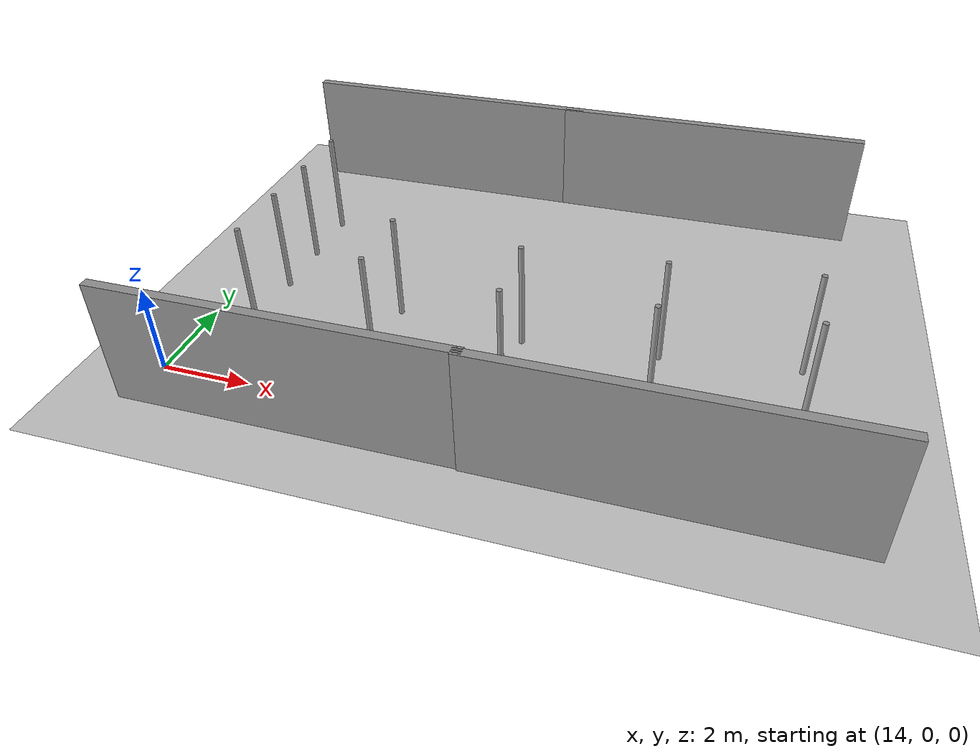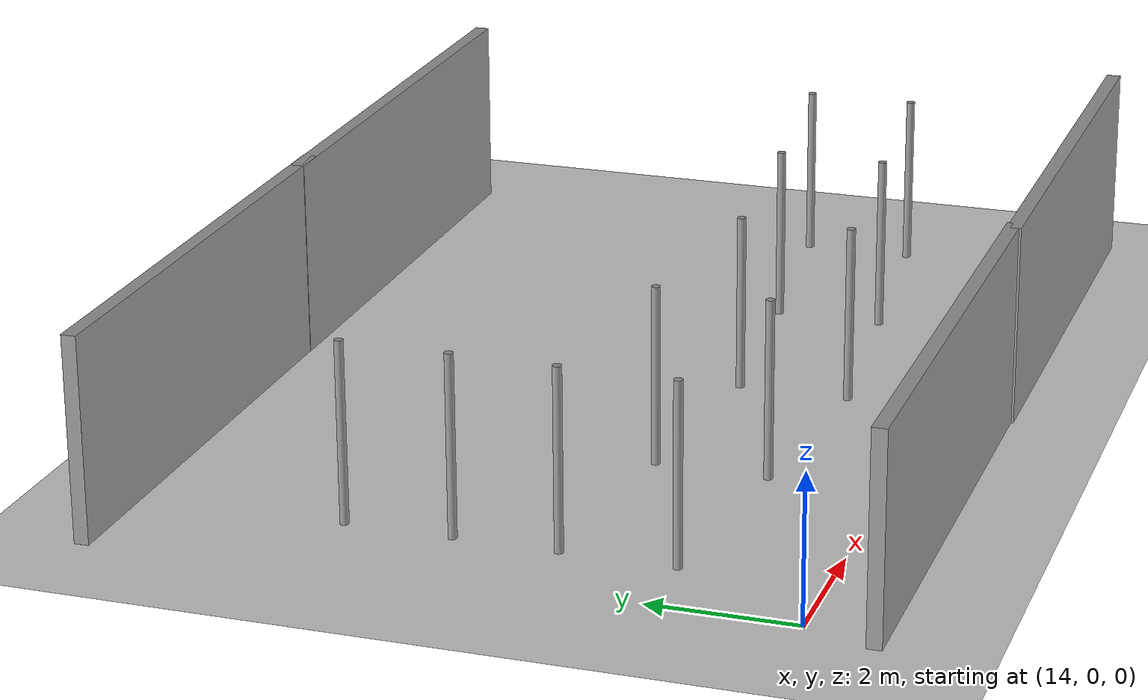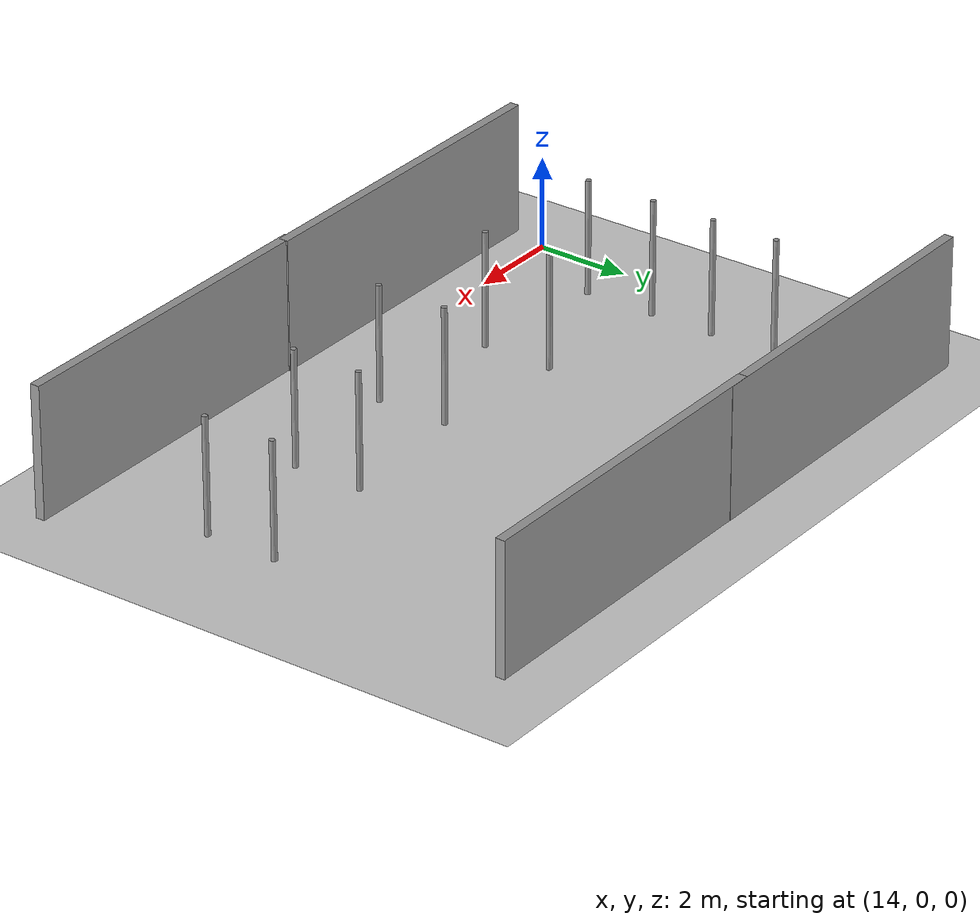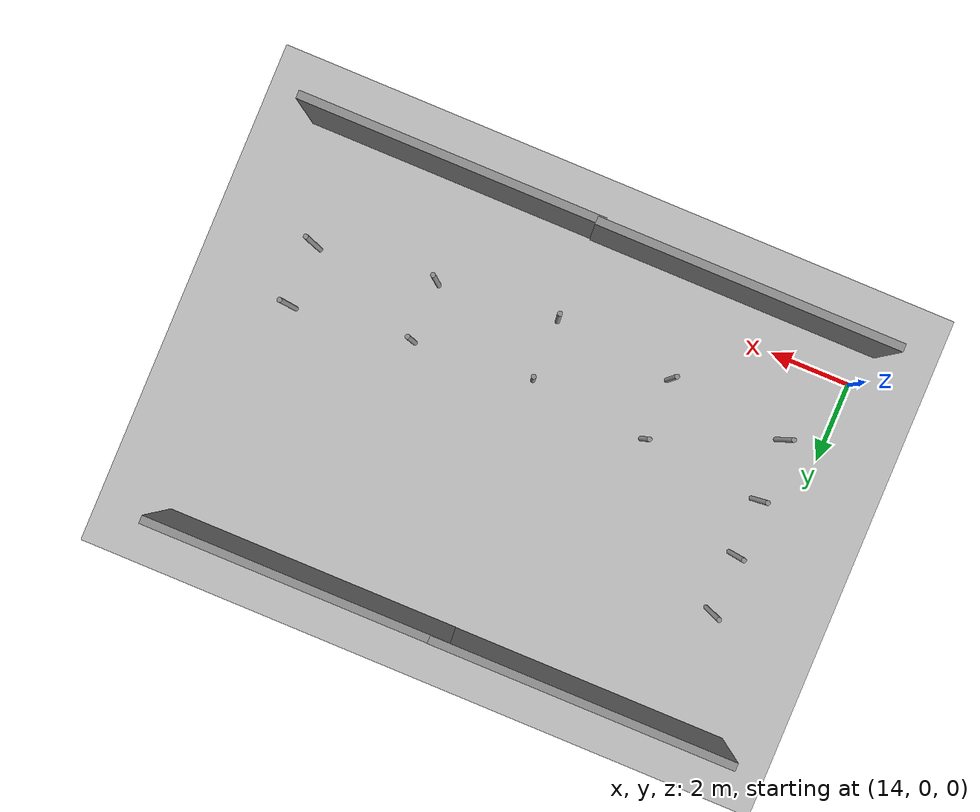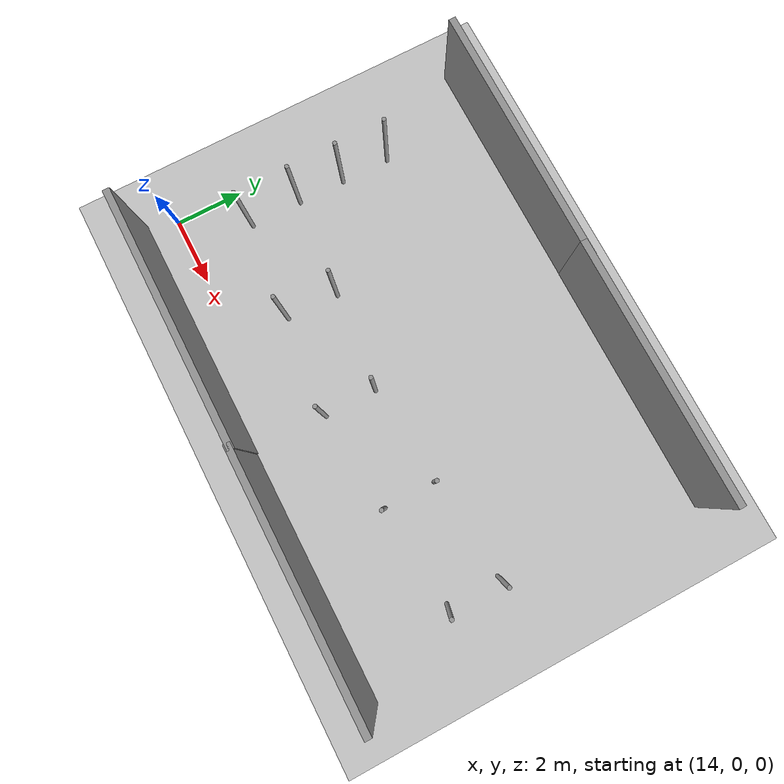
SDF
<sdf version="1.6">
 <world name="default">
  <model name="ground_plane">
   <static>1</static>
   <link name="link">
    <collision name="collision">
     <geometry><plane><normal>0 0 1</normal><size>100 100</size></plane></geometry>
     <surface><friction><ode><mu>100</mu><mu2>50</mu2></ode></friction></surface>
    </collision>
    <visual name="visual">
     <cast_shadows>0</cast_shadows>
     <geometry><plane><normal>0 0 1</normal><size>100 100</size></plane></geometry>
     <material>
      <script><uri>file://media/materials/scripts/gazebo.material</uri><name>Gazebo/Grey</name></script>
     </material>
    </visual>
   </link>
  </model>
  <model name="pole_11">
   <link name="link_0">
    <inertial>
     <mass>0.0364582</mass>
     <inertia>
      <ixx>0.00312124</ixx>
      <ixy>0</ixy>
      <ixz>0</ixz>
      <iyy>0.00312124</iyy>
      <iyz>0</iyz>
      <izz>0.00016615</izz>
     </inertia>
    </inertial>
    <visual name="visual">
     <geometry><cylinder><radius>0.06</radius><length>2.5</length></cylinder></geometry>
     <material>
      <lighting>1</lighting>
      <script><uri>file://media/materials/scripts/gazebo.material</uri><name>Gazebo/Grey</name></script>
      <ambient>0.3 0.3 0.3 1</ambient>
      <diffuse>0.7 0.7 0.7 1</diffuse>
      <specular>0.01 0.01 0.01 1</specular>
      <emissive>0 0 0 1</emissive>
      <shader type="vertex"><normal_map>__default__</normal_map></shader>
     </material>
    </visual>
    <collision name="collision">
     <geometry><cylinder><radius>0.06</radius><length>2.5</length></cylinder></geometry>
     <surface>
      <friction>
       <ode><mu>1</mu><mu2>1</mu2><fdir1>0 0 0</fdir1><slip1>0</slip1><slip2>0</slip2></ode>
       <torsional>
        <coefficient>1</coefficient>
        <patch_radius>0</patch_radius>
        <surface_radius>0</surface_radius>
        <use_patch_radius>1</use_patch_radius>
        <ode><slip>0</slip></ode>
       </torsional>
      </friction>
      <bounce><restitution_coefficient>0</restitution_coefficient><threshold>1e+06</threshold></bounce>
      <contact>
       <collide_without_contact>0</collide_without_contact>
       <collide_without_contact_bitmask>1</collide_without_contact_bitmask>
       <collide_bitmask>1</collide_bitmask>
       <ode>
        <soft_cfm>0</soft_cfm>
        <soft_erp>0.2</soft_erp>
        <kp>1e+13</kp>
        <kd>1</kd>
        <max_vel>0.01</max_vel>
        <min_depth>0</min_depth>
       </ode>
       <bullet>
        <split_impulse>1</split_impulse>
        <split_impulse_penetration_threshold>-0.01</split_impulse_penetration_threshold>
        <soft_cfm>0</soft_cfm>
        <soft_erp>0.2</soft_erp>
        <kp>1e+13</kp>
        <kd>1</kd>
       </bullet>
      </contact>
     </surface>
    </collision>
   </link>
   <static>0</static>
   <pose>15.1067 1.89973 1.24999 -1e-06 1e-06 -0.030798</pose>
  </model>
  <model name="pole_12">
   <link name="link_0">
    <inertial>
     <mass>0.0364582</mass>
     <inertia>
      <ixx>0.00312124</ixx>
      <ixy>0</ixy>
      <ixz>0</ixz>
      <iyy>0.00312124</iyy>
      <iyz>0</iyz>
      <izz>0.00016615</izz>
     </inertia>
    </inertial>
    <visual name="visual">
     <geometry><cylinder><radius>0.06</radius><length>2.5</length></cylinder></geometry>
     <material>
      <lighting>1</lighting>
      <script><uri>file://media/materials/scripts/gazebo.material</uri><name>Gazebo/Grey</name></script>
      <ambient>0.3 0.3 0.3 1</ambient>
      <diffuse>0.7 0.7 0.7 1</diffuse>
      <specular>0.01 0.01 0.01 1</specular>
      <emissive>0 0 0 1</emissive>
      <shader type="vertex"><normal_map>__default__</normal_map></shader>
     </material>
    </visual>
    <collision name="collision">
     <geometry><cylinder><radius>0.06</radius><length>2.5</length></cylinder></geometry>
     <surface>
      <friction>
       <ode><mu>1</mu><mu2>1</mu2><fdir1>0 0 0</fdir1><slip1>0</slip1><slip2>0</slip2></ode>
       <torsional>
        <coefficient>1</coefficient>
        <patch_radius>0</patch_radius>
        <surface_radius>0</surface_radius>
        <use_patch_radius>1</use_patch_radius>
        <ode><slip>0</slip></ode>
       </torsional>
      </friction>
      <bounce><restitution_coefficient>0</restitution_coefficient><threshold>1e+06</threshold></bounce>
      <contact>
       <collide_without_contact>0</collide_without_contact>
       <collide_without_contact_bitmask>1</collide_without_contact_bitmask>
       <collide_bitmask>1</collide_bitmask>
       <ode>
        <soft_cfm>0</soft_cfm>
        <soft_erp>0.2</soft_erp>
        <kp>1e+13</kp>
        <kd>1</kd>
        <max_vel>0.01</max_vel>
        <min_depth>0</min_depth>
       </ode>
       <bullet>
        <split_impulse>1</split_impulse>
        <split_impulse_penetration_threshold>-0.01</split_impulse_penetration_threshold>
        <soft_cfm>0</soft_cfm>
        <soft_erp>0.2</soft_erp>
        <kp>1e+13</kp>
        <kd>1</kd>
       </bullet>
      </contact>
     </surface>
    </collision>
   </link>
   <static>0</static>
   <pose>18.1068 1.59035 1.25 -1e-06 -0 -0.033715</pose>
  </model>
  <model name="pole_13">
   <link name="link_0">
    <inertial>
     <mass>0.0364582</mass>
     <inertia>
      <ixx>0.00312124</ixx>
      <ixy>0</ixy>
      <ixz>0</ixz>
      <iyy>0.00312124</iyy>
      <iyz>0</iyz>
      <izz>0.00016615</izz>
     </inertia>
    </inertial>
    <visual name="visual">
     <geometry><cylinder><radius>0.06</radius><length>2.5</length></cylinder></geometry>
     <material>
      <lighting>1</lighting>
      <script><uri>file://media/materials/scripts/gazebo.material</uri><name>Gazebo/Grey</name></script>
      <ambient>0.3 0.3 0.3 1</ambient>
      <diffuse>0.7 0.7 0.7 1</diffuse>
      <specular>0.01 0.01 0.01 1</specular>
      <emissive>0 0 0 1</emissive>
      <shader type="vertex"><normal_map>__default__</normal_map></shader>
     </material>
    </visual>
    <collision name="collision">
     <geometry><cylinder><radius>0.06</radius><length>2.5</length></cylinder></geometry>
     <surface>
      <friction>
       <ode><mu>1</mu><mu2>1</mu2><fdir1>0 0 0</fdir1><slip1>0</slip1><slip2>0</slip2></ode>
       <torsional>
        <coefficient>1</coefficient>
        <patch_radius>0</patch_radius>
        <surface_radius>0</surface_radius>
        <use_patch_radius>1</use_patch_radius>
        <ode><slip>0</slip></ode>
       </torsional>
      </friction>
      <bounce><restitution_coefficient>0</restitution_coefficient><threshold>1e+06</threshold></bounce>
      <contact>
       <collide_without_contact>0</collide_without_contact>
       <collide_without_contact_bitmask>1</collide_without_contact_bitmask>
       <collide_bitmask>1</collide_bitmask>
       <ode>
        <soft_cfm>0</soft_cfm>
        <soft_erp>0.2</soft_erp>
        <kp>1e+13</kp>
        <kd>1</kd>
        <max_vel>0.01</max_vel>
        <min_depth>0</min_depth>
       </ode>
       <bullet>
        <split_impulse>1</split_impulse>
        <split_impulse_penetration_threshold>-0.01</split_impulse_penetration_threshold>
        <soft_cfm>0</soft_cfm>
        <soft_erp>0.2</soft_erp>
        <kp>1e+13</kp>
        <kd>1</kd>
       </bullet>
      </contact>
     </surface>
    </collision>
   </link>
   <static>0</static>
   <pose>21.1068 1.29034 1.24999 -1e-06 1e-06 -0.03336</pose>
  </model>
  <model name="pole_14">
   <link name="link_0">
    <inertial>
     <mass>0.0364582</mass>
     <inertia>
      <ixx>0.00312124</ixx>
      <ixy>0</ixy>
      <ixz>0</ixz>
      <iyy>0.00312124</iyy>
      <iyz>0</iyz>
      <izz>0.00016615</izz>
     </inertia>
    </inertial>
    <visual name="visual">
     <geometry><cylinder><radius>0.06</radius><length>2.5</length></cylinder></geometry>
     <material>
      <lighting>1</lighting>
      <script><uri>file://media/materials/scripts/gazebo.material</uri><name>Gazebo/Grey</name></script>
      <ambient>0.3 0.3 0.3 1</ambient>
      <diffuse>0.7 0.7 0.7 1</diffuse>
      <specular>0.01 0.01 0.01 1</specular>
      <emissive>0 0 0 1</emissive>
      <shader type="vertex"><normal_map>__default__</normal_map></shader>
     </material>
    </visual>
    <collision name="collision">
     <geometry><cylinder><radius>0.06</radius><length>2.5</length></cylinder></geometry>
     <surface>
      <friction>
       <ode><mu>1</mu><mu2>1</mu2><fdir1>0 0 0</fdir1><slip1>0</slip1><slip2>0</slip2></ode>
       <torsional>
        <coefficient>1</coefficient>
        <patch_radius>0</patch_radius>
        <surface_radius>0</surface_radius>
        <use_patch_radius>1</use_patch_radius>
        <ode><slip>0</slip></ode>
       </torsional>
      </friction>
      <bounce><restitution_coefficient>0</restitution_coefficient><threshold>1e+06</threshold></bounce>
      <contact>
       <collide_without_contact>0</collide_without_contact>
       <collide_without_contact_bitmask>1</collide_without_contact_bitmask>
       <collide_bitmask>1</collide_bitmask>
       <ode>
        <soft_cfm>0</soft_cfm>
        <soft_erp>0.2</soft_erp>
        <kp>1e+13</kp>
        <kd>1</kd>
        <max_vel>0.01</max_vel>
        <min_depth>0</min_depth>
       </ode>
       <bullet>
        <split_impulse>1</split_impulse>
        <split_impulse_penetration_threshold>-0.01</split_impulse_penetration_threshold>
        <soft_cfm>0</soft_cfm>
        <soft_erp>0.2</soft_erp>
        <kp>1e+13</kp>
        <kd>1</kd>
       </bullet>
      </contact>
     </surface>
    </collision>
   </link>
   <static>0</static>
   <pose>15.1068 3.44586 1.24999 -1e-06 -1e-06 -0.006445</pose>
  </model>
  <model name="pole_15">
   <link name="link_0">
    <inertial>
     <mass>0.0364582</mass>
     <inertia>
      <ixx>0.00312124</ixx>
      <ixy>0</ixy>
      <ixz>0</ixz>
      <iyy>0.00312124</iyy>
      <iyz>0</iyz>
      <izz>0.00016615</izz>
     </inertia>
    </inertial>
    <visual name="visual">
     <geometry><cylinder><radius>0.06</radius><length>2.5</length></cylinder></geometry>
     <material>
      <lighting>1</lighting>
      <script><uri>file://media/materials/scripts/gazebo.material</uri><name>Gazebo/Grey</name></script>
      <ambient>0.3 0.3 0.3 1</ambient>
      <diffuse>0.7 0.7 0.7 1</diffuse>
      <specular>0.01 0.01 0.01 1</specular>
      <emissive>0 0 0 1</emissive>
      <shader type="vertex"><normal_map>__default__</normal_map></shader>
     </material>
    </visual>
    <collision name="collision">
     <geometry><cylinder><radius>0.06</radius><length>2.5</length></cylinder></geometry>
     <surface>
      <friction>
       <ode><mu>1</mu><mu2>1</mu2><fdir1>0 0 0</fdir1><slip1>0</slip1><slip2>0</slip2></ode>
       <torsional>
        <coefficient>1</coefficient>
        <patch_radius>0</patch_radius>
        <surface_radius>0</surface_radius>
        <use_patch_radius>1</use_patch_radius>
        <ode><slip>0</slip></ode>
       </torsional>
      </friction>
      <bounce><restitution_coefficient>0</restitution_coefficient><threshold>1e+06</threshold></bounce>
      <contact>
       <collide_without_contact>0</collide_without_contact>
       <collide_without_contact_bitmask>1</collide_without_contact_bitmask>
       <collide_bitmask>1</collide_bitmask>
       <ode>
        <soft_cfm>0</soft_cfm>
        <soft_erp>0.2</soft_erp>
        <kp>1e+13</kp>
        <kd>1</kd>
        <max_vel>0.01</max_vel>
        <min_depth>0</min_depth>
       </ode>
       <bullet>
        <split_impulse>1</split_impulse>
        <split_impulse_penetration_threshold>-0.01</split_impulse_penetration_threshold>
        <soft_cfm>0</soft_cfm>
        <soft_erp>0.2</soft_erp>
        <kp>1e+13</kp>
        <kd>1</kd>
       </bullet>
      </contact>
     </surface>
    </collision>
   </link>
   <static>0</static>
   <pose>18.1396 3.1404 1.25 0 -0 0.055466</pose>
  </model>
  <model name="pole_16">
   <link name="link_0">
    <inertial>
     <mass>0.0364582</mass>
     <inertia>
      <ixx>0.00312124</ixx>
      <ixy>0</ixy>
      <ixz>0</ixz>
      <iyy>0.00312124</iyy>
      <iyz>0</iyz>
      <izz>0.00016615</izz>
     </inertia>
    </inertial>
    <visual name="visual">
     <geometry><cylinder><radius>0.06</radius><length>2.5</length></cylinder></geometry>
     <material>
      <lighting>1</lighting>
      <script><uri>file://media/materials/scripts/gazebo.material</uri><name>Gazebo/Grey</name></script>
      <ambient>0.3 0.3 0.3 1</ambient>
      <diffuse>0.7 0.7 0.7 1</diffuse>
      <specular>0.01 0.01 0.01 1</specular>
      <emissive>0 0 0 1</emissive>
      <shader type="vertex"><normal_map>__default__</normal_map></shader>
     </material>
    </visual>
    <collision name="collision">
     <geometry><cylinder><radius>0.06</radius><length>2.5</length></cylinder></geometry>
     <surface>
      <friction>
       <ode><mu>1</mu><mu2>1</mu2><fdir1>0 0 0</fdir1><slip1>0</slip1><slip2>0</slip2></ode>
       <torsional>
        <coefficient>1</coefficient>
        <patch_radius>0</patch_radius>
        <surface_radius>0</surface_radius>
        <use_patch_radius>1</use_patch_radius>
        <ode><slip>0</slip></ode>
       </torsional>
      </friction>
      <bounce><restitution_coefficient>0</restitution_coefficient><threshold>1e+06</threshold></bounce>
      <contact>
       <collide_without_contact>0</collide_without_contact>
       <collide_without_contact_bitmask>1</collide_without_contact_bitmask>
       <collide_bitmask>1</collide_bitmask>
       <ode>
        <soft_cfm>0</soft_cfm>
        <soft_erp>0.2</soft_erp>
        <kp>1e+13</kp>
        <kd>1</kd>
        <max_vel>0.01</max_vel>
        <min_depth>0</min_depth>
       </ode>
       <bullet>
        <split_impulse>1</split_impulse>
        <split_impulse_penetration_threshold>-0.01</split_impulse_penetration_threshold>
        <soft_cfm>0</soft_cfm>
        <soft_erp>0.2</soft_erp>
        <kp>1e+13</kp>
        <kd>1</kd>
       </bullet>
      </contact>
     </surface>
    </collision>
   </link>
   <static>0</static>
   <pose>21.1076 2.84036 1.25 -1e-06 -1e-06 0.041289</pose>
  </model>
  <model name="pole_17">
   <link name="link_0">
    <inertial>
     <mass>0.0364582</mass>
     <inertia>
      <ixx>0.00312124</ixx>
      <ixy>0</ixy>
      <ixz>0</ixz>
      <iyy>0.00312124</iyy>
      <iyz>0</iyz>
      <izz>0.00016615</izz>
     </inertia>
    </inertial>
    <visual name="visual">
     <geometry><cylinder><radius>0.06</radius><length>2.5</length></cylinder></geometry>
     <material>
      <lighting>1</lighting>
      <script><uri>file://media/materials/scripts/gazebo.material</uri><name>Gazebo/Grey</name></script>
      <ambient>0.3 0.3 0.3 1</ambient>
      <diffuse>0.7 0.7 0.7 1</diffuse>
      <specular>0.01 0.01 0.01 1</specular>
      <emissive>0 0 0 1</emissive>
      <shader type="vertex"><normal_map>__default__</normal_map></shader>
     </material>
    </visual>
    <collision name="collision">
     <geometry><cylinder><radius>0.06</radius><length>2.5</length></cylinder></geometry>
     <surface>
      <friction>
       <ode><mu>1</mu><mu2>1</mu2><fdir1>0 0 0</fdir1><slip1>0</slip1><slip2>0</slip2></ode>
       <torsional>
        <coefficient>1</coefficient>
        <patch_radius>0</patch_radius>
        <surface_radius>0</surface_radius>
        <use_patch_radius>1</use_patch_radius>
        <ode><slip>0</slip></ode>
       </torsional>
      </friction>
      <bounce><restitution_coefficient>0</restitution_coefficient><threshold>1e+06</threshold></bounce>
      <contact>
       <collide_without_contact>0</collide_without_contact>
       <collide_without_contact_bitmask>1</collide_without_contact_bitmask>
       <collide_bitmask>1</collide_bitmask>
       <ode>
        <soft_cfm>0</soft_cfm>
        <soft_erp>0.2</soft_erp>
        <kp>1e+13</kp>
        <kd>1</kd>
        <max_vel>0.01</max_vel>
        <min_depth>0</min_depth>
       </ode>
       <bullet>
        <split_impulse>1</split_impulse>
        <split_impulse_penetration_threshold>-0.01</split_impulse_penetration_threshold>
        <soft_cfm>0</soft_cfm>
        <soft_erp>0.2</soft_erp>
        <kp>1e+13</kp>
        <kd>1</kd>
       </bullet>
      </contact>
     </surface>
    </collision>
   </link>
   <static>0</static>
   <pose>15.1067 4.85523 1.25 -1e-06 -0 -0.033584</pose>
  </model>
  <model name="pole_18">
   <link name="link_0">
    <inertial>
     <mass>0.0364582</mass>
     <inertia>
      <ixx>0.00312124</ixx>
      <ixy>0</ixy>
      <ixz>0</ixz>
      <iyy>0.00312124</iyy>
      <iyz>0</iyz>
      <izz>0.00016615</izz>
     </inertia>
    </inertial>
    <visual name="visual">
     <geometry><cylinder><radius>0.06</radius><length>2.5</length></cylinder></geometry>
     <material>
      <lighting>1</lighting>
      <script><uri>file://media/materials/scripts/gazebo.material</uri><name>Gazebo/Grey</name></script>
      <ambient>0.3 0.3 0.3 1</ambient>
      <diffuse>0.7 0.7 0.7 1</diffuse>
      <specular>0.01 0.01 0.01 1</specular>
      <emissive>0 0 0 1</emissive>
      <shader type="vertex"><normal_map>__default__</normal_map></shader>
     </material>
    </visual>
    <collision name="collision">
     <geometry><cylinder><radius>0.06</radius><length>2.5</length></cylinder></geometry>
     <surface>
      <friction>
       <ode><mu>1</mu><mu2>1</mu2><fdir1>0 0 0</fdir1><slip1>0</slip1><slip2>0</slip2></ode>
       <torsional>
        <coefficient>1</coefficient>
        <patch_radius>0</patch_radius>
        <surface_radius>0</surface_radius>
        <use_patch_radius>1</use_patch_radius>
        <ode><slip>0</slip></ode>
       </torsional>
      </friction>
      <bounce><restitution_coefficient>0</restitution_coefficient><threshold>1e+06</threshold></bounce>
      <contact>
       <collide_without_contact>0</collide_without_contact>
       <collide_without_contact_bitmask>1</collide_without_contact_bitmask>
       <collide_bitmask>1</collide_bitmask>
       <ode>
        <soft_cfm>0</soft_cfm>
        <soft_erp>0.2</soft_erp>
        <kp>1e+13</kp>
        <kd>1</kd>
        <max_vel>0.01</max_vel>
        <min_depth>0</min_depth>
       </ode>
       <bullet>
        <split_impulse>1</split_impulse>
        <split_impulse_penetration_threshold>-0.01</split_impulse_penetration_threshold>
        <soft_cfm>0</soft_cfm>
        <soft_erp>0.2</soft_erp>
        <kp>1e+13</kp>
        <kd>1</kd>
       </bullet>
      </contact>
     </surface>
    </collision>
   </link>
   <static>0</static>
   <pose>27.1 1.89017 1.25 -1e-06 -1e-06 -0.02773</pose>
  </model>
  <model name="pole_19">
   <link name="link_0">
    <inertial>
     <mass>0.0364582</mass>
     <inertia>
      <ixx>0.00312124</ixx>
      <ixy>0</ixy>
      <ixz>0</ixz>
      <iyy>0.00312124</iyy>
      <iyz>0</iyz>
      <izz>0.00016615</izz>
     </inertia>
    </inertial>
    <visual name="visual">
     <geometry><cylinder><radius>0.06</radius><length>2.5</length></cylinder></geometry>
     <material>
      <lighting>1</lighting>
      <script><uri>file://media/materials/scripts/gazebo.material</uri><name>Gazebo/Grey</name></script>
      <ambient>0.3 0.3 0.3 1</ambient>
      <diffuse>0.7 0.7 0.7 1</diffuse>
      <specular>0.01 0.01 0.01 1</specular>
      <emissive>0 0 0 1</emissive>
      <shader type="vertex"><normal_map>__default__</normal_map></shader>
     </material>
    </visual>
    <collision name="collision">
     <geometry><cylinder><radius>0.06</radius><length>2.5</length></cylinder></geometry>
     <surface>
      <friction>
       <ode><mu>1</mu><mu2>1</mu2><fdir1>0 0 0</fdir1><slip1>0</slip1><slip2>0</slip2></ode>
       <torsional>
        <coefficient>1</coefficient>
        <patch_radius>0</patch_radius>
        <surface_radius>0</surface_radius>
        <use_patch_radius>1</use_patch_radius>
        <ode><slip>0</slip></ode>
       </torsional>
      </friction>
      <bounce><restitution_coefficient>0</restitution_coefficient><threshold>1e+06</threshold></bounce>
      <contact>
       <collide_without_contact>0</collide_without_contact>
       <collide_without_contact_bitmask>1</collide_without_contact_bitmask>
       <collide_bitmask>1</collide_bitmask>
       <ode>
        <soft_cfm>0</soft_cfm>
        <soft_erp>0.2</soft_erp>
        <kp>1e+13</kp>
        <kd>1</kd>
        <max_vel>0.01</max_vel>
        <min_depth>0</min_depth>
       </ode>
       <bullet>
        <split_impulse>1</split_impulse>
        <split_impulse_penetration_threshold>-0.01</split_impulse_penetration_threshold>
        <soft_cfm>0</soft_cfm>
        <soft_erp>0.2</soft_erp>
        <kp>1e+13</kp>
        <kd>1</kd>
       </bullet>
      </contact>
     </surface>
    </collision>
   </link>
   <static>0</static>
   <pose>27.1 3.44023 1.25 1e-06 -1e-06 -0.300493</pose>
  </model>
  <model name="pole_20">
   <link name="link_0">
    <inertial>
     <mass>0.0364582</mass>
     <inertia>
      <ixx>0.00312124</ixx>
      <ixy>0</ixy>
      <ixz>0</ixz>
      <iyy>0.00312124</iyy>
      <iyz>0</iyz>
      <izz>0.00016615</izz>
     </inertia>
    </inertial>
    <visual name="visual">
     <geometry><cylinder><radius>0.06</radius><length>2.5</length></cylinder></geometry>
     <material>
      <lighting>1</lighting>
      <script><uri>file://media/materials/scripts/gazebo.material</uri><name>Gazebo/Grey</name></script>
      <ambient>0.3 0.3 0.3 1</ambient>
      <diffuse>0.7 0.7 0.7 1</diffuse>
      <specular>0.01 0.01 0.01 1</specular>
      <emissive>0 0 0 1</emissive>
      <shader type="vertex"><normal_map>__default__</normal_map></shader>
     </material>
    </visual>
    <collision name="collision">
     <geometry><cylinder><radius>0.06</radius><length>2.5</length></cylinder></geometry>
     <surface>
      <friction>
       <ode><mu>1</mu><mu2>1</mu2><fdir1>0 0 0</fdir1><slip1>0</slip1><slip2>0</slip2></ode>
       <torsional>
        <coefficient>1</coefficient>
        <patch_radius>0</patch_radius>
        <surface_radius>0</surface_radius>
        <use_patch_radius>1</use_patch_radius>
        <ode><slip>0</slip></ode>
       </torsional>
      </friction>
      <bounce><restitution_coefficient>0</restitution_coefficient><threshold>1e+06</threshold></bounce>
      <contact>
       <collide_without_contact>0</collide_without_contact>
       <collide_without_contact_bitmask>1</collide_without_contact_bitmask>
       <collide_bitmask>1</collide_bitmask>
       <ode>
        <soft_cfm>0</soft_cfm>
        <soft_erp>0.2</soft_erp>
        <kp>1e+13</kp>
        <kd>1</kd>
        <max_vel>0.01</max_vel>
        <min_depth>0</min_depth>
       </ode>
       <bullet>
        <split_impulse>1</split_impulse>
        <split_impulse_penetration_threshold>-0.01</split_impulse_penetration_threshold>
        <soft_cfm>0</soft_cfm>
        <soft_erp>0.2</soft_erp>
        <kp>1e+13</kp>
        <kd>1</kd>
       </bullet>
      </contact>
     </surface>
    </collision>
   </link>
   <static>0</static>
   <pose>15.1067 6.31814 1.24999 -1e-06 -0 -0.0328</pose>
  </model>
  <model name="pole_21">
   <link name="link_0">
    <inertial>
     <mass>0.0364582</mass>
     <inertia>
      <ixx>0.00312124</ixx>
      <ixy>0</ixy>
      <ixz>0</ixz>
      <iyy>0.00312124</iyy>
      <iyz>0</iyz>
      <izz>0.00016615</izz>
     </inertia>
    </inertial>
    <visual name="visual">
     <geometry><cylinder><radius>0.06</radius><length>2.5</length></cylinder></geometry>
     <material>
      <lighting>1</lighting>
      <script><uri>file://media/materials/scripts/gazebo.material</uri><name>Gazebo/Grey</name></script>
      <ambient>0.3 0.3 0.3 1</ambient>
      <diffuse>0.7 0.7 0.7 1</diffuse>
      <specular>0.01 0.01 0.01 1</specular>
      <emissive>0 0 0 1</emissive>
      <shader type="vertex"><normal_map>__default__</normal_map></shader>
     </material>
    </visual>
    <collision name="collision">
     <geometry><cylinder><radius>0.06</radius><length>2.5</length></cylinder></geometry>
     <surface>
      <friction>
       <ode><mu>1</mu><mu2>1</mu2><fdir1>0 0 0</fdir1><slip1>0</slip1><slip2>0</slip2></ode>
       <torsional>
        <coefficient>1</coefficient>
        <patch_radius>0</patch_radius>
        <surface_radius>0</surface_radius>
        <use_patch_radius>1</use_patch_radius>
        <ode><slip>0</slip></ode>
       </torsional>
      </friction>
      <bounce><restitution_coefficient>0</restitution_coefficient><threshold>1e+06</threshold></bounce>
      <contact>
       <collide_without_contact>0</collide_without_contact>
       <collide_without_contact_bitmask>1</collide_without_contact_bitmask>
       <collide_bitmask>1</collide_bitmask>
       <ode>
        <soft_cfm>0</soft_cfm>
        <soft_erp>0.2</soft_erp>
        <kp>1e+13</kp>
        <kd>1</kd>
        <max_vel>0.01</max_vel>
        <min_depth>0</min_depth>
       </ode>
       <bullet>
        <split_impulse>1</split_impulse>
        <split_impulse_penetration_threshold>-0.01</split_impulse_penetration_threshold>
        <soft_cfm>0</soft_cfm>
        <soft_erp>0.2</soft_erp>
        <kp>1e+13</kp>
        <kd>1</kd>
       </bullet>
      </contact>
     </surface>
    </collision>
   </link>
   <static>0</static>
   <pose>24.1 3.10032 1.24999 -1e-06 -0 -0.032183</pose>
  </model>
  <model name="pole_22">
   <link name="link_0">
    <inertial>
     <mass>0.0364582</mass>
     <inertia>
      <ixx>0.00312124</ixx>
      <ixy>0</ixy>
      <ixz>0</ixz>
      <iyy>0.00312124</iyy>
      <iyz>0</iyz>
      <izz>0.00016615</izz>
     </inertia>
    </inertial>
    <visual name="visual">
     <geometry><cylinder><radius>0.06</radius><length>2.5</length></cylinder></geometry>
     <material>
      <lighting>1</lighting>
      <script><uri>file://media/materials/scripts/gazebo.material</uri><name>Gazebo/Grey</name></script>
      <ambient>0.3 0.3 0.3 1</ambient>
      <diffuse>0.7 0.7 0.7 1</diffuse>
      <specular>0.01 0.01 0.01 1</specular>
      <emissive>0 0 0 1</emissive>
      <shader type="vertex"><normal_map>__default__</normal_map></shader>
     </material>
    </visual>
    <collision name="collision">
     <geometry><cylinder><radius>0.06</radius><length>2.5</length></cylinder></geometry>
     <surface>
      <friction>
       <ode><mu>1</mu><mu2>1</mu2><fdir1>0 0 0</fdir1><slip1>0</slip1><slip2>0</slip2></ode>
       <torsional>
        <coefficient>1</coefficient>
        <patch_radius>0</patch_radius>
        <surface_radius>0</surface_radius>
        <use_patch_radius>1</use_patch_radius>
        <ode><slip>0</slip></ode>
       </torsional>
      </friction>
      <bounce><restitution_coefficient>0</restitution_coefficient><threshold>1e+06</threshold></bounce>
      <contact>
       <collide_without_contact>0</collide_without_contact>
       <collide_without_contact_bitmask>1</collide_without_contact_bitmask>
       <collide_bitmask>1</collide_bitmask>
       <ode>
        <soft_cfm>0</soft_cfm>
        <soft_erp>0.2</soft_erp>
        <kp>1e+13</kp>
        <kd>1</kd>
        <max_vel>0.01</max_vel>
        <min_depth>0</min_depth>
       </ode>
       <bullet>
        <split_impulse>1</split_impulse>
        <split_impulse_penetration_threshold>-0.01</split_impulse_penetration_threshold>
        <soft_cfm>0</soft_cfm>
        <soft_erp>0.2</soft_erp>
        <kp>1e+13</kp>
        <kd>1</kd>
       </bullet>
      </contact>
     </surface>
    </collision>
   </link>
   <static>0</static>
   <pose>24.1 1.59031 1.24999 -0 1e-06 -0.035937</pose>
  </model>
  <model name="grey_wall_clone">
   <static>1</static>
   <link name="link">
    <pose>0 0 1.4 0 -0 0</pose>
    <collision name="collision"><geometry><box><size>7.5 0.2 2.8</size></box></geometry></collision>
    <visual name="visual">
     <cast_shadows>0</cast_shadows>
     <geometry><box><size>7.5 0.2 2.8</size></box></geometry>
     <material>
      <script>
       <uri>model://grey_wall/materials/scripts</uri>
       <uri>model://grey_wall/materials/textures</uri>
       <name>vrc/grey_wall</name>
      </script>
     </material>
    </visual>
   </link>
   <pose>17.2685 9.20692 0 0 -0 0</pose>
  </model>
  <model name="grey_wall_clone_0">
   <static>1</static>
   <link name="link">
    <pose>0 0 1.4 0 -0 0</pose>
    <collision name="collision"><geometry><box><size>7.5 0.2 2.8</size></box></geometry></collision>
    <visual name="visual">
     <cast_shadows>0</cast_shadows>
     <geometry><box><size>7.5 0.2 2.8</size></box></geometry>
     <material>
      <script>
       <uri>model://grey_wall/materials/scripts</uri>
       <uri>model://grey_wall/materials/textures</uri>
       <name>vrc/grey_wall</name>
      </script>
     </material>
    </visual>
   </link>
   <pose>24.29 9.20098 0 0 -0 0</pose>
  </model>
  <model name="grey_wall_clone_1_clone">
   <static>1</static>
   <link name="link">
    <pose>0 0 1.4 0 -0 0</pose>
    <collision name="collision"><geometry><box><size>7.5 0.2 2.8</size></box></geometry></collision>
    <visual name="visual">
     <cast_shadows>0</cast_shadows>
     <geometry><box><size>7.5 0.2 2.8</size></box></geometry>
     <material>
      <script>
       <uri>model://grey_wall/materials/scripts</uri>
       <uri>model://grey_wall/materials/textures</uri>
       <name>vrc/grey_wall</name>
      </script>
     </material>
    </visual>
   </link>
   <pose>17.4015 -0.945461 0 0 -0 0</pose>
  </model>
  <model name="grey_wall_clone_1_clone_clone">
   <static>1</static>
   <link name="link">
    <pose>0 0 1.4 0 -0 0</pose>
    <collision name="collision"><geometry><box><size>7.5 0.2 2.8</size></box></geometry></collision>
    <visual name="visual">
     <cast_shadows>0</cast_shadows>
     <geometry><box><size>7.5 0.2 2.8</size></box></geometry>
     <material>
      <script>
       <uri>model://grey_wall/materials/scripts</uri>
       <uri>model://grey_wall/materials/textures</uri>
       <name>vrc/grey_wall</name>
      </script>
     </material>
    </visual>
   </link>
   <pose>24.6991 -0.976544 0 0 -0 0</pose>
  </model>
 </world>
</sdf>
